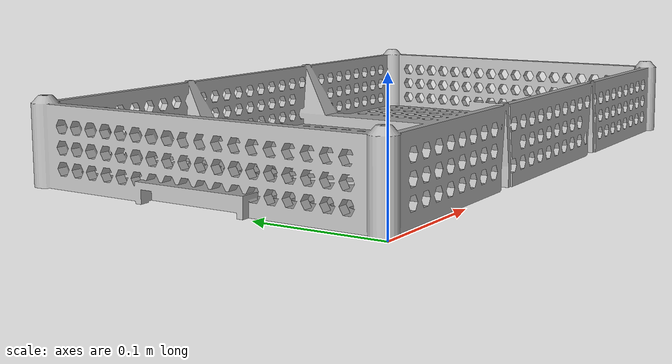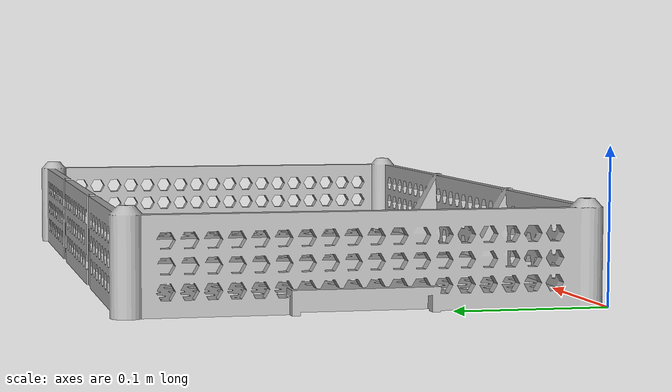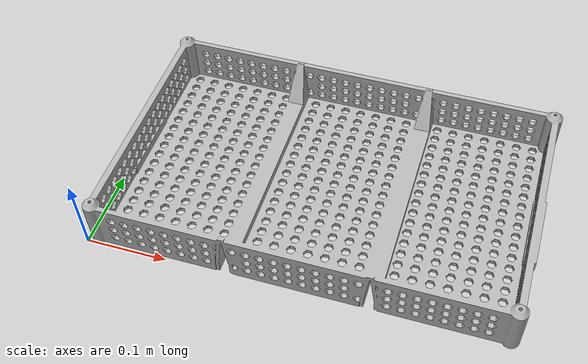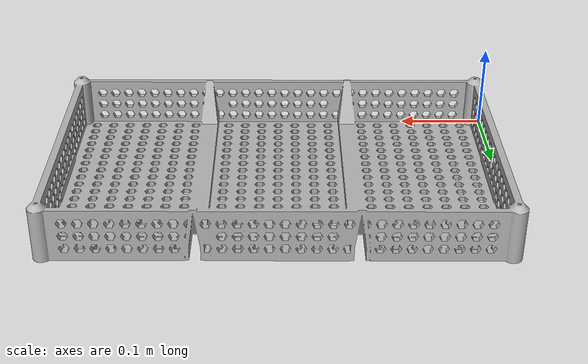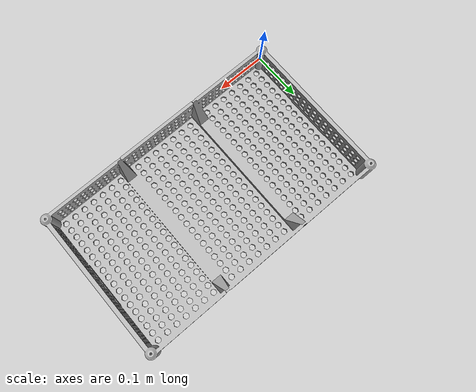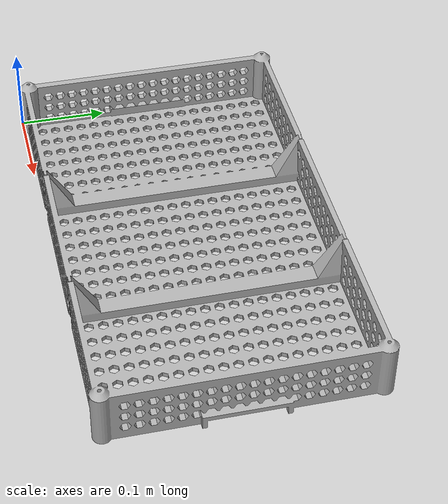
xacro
<?xml version="1.0"?>
<robot name="bandeja" xmlns:xacro="http://www.ros.org/wiki/xacro">

  <xacro:arg name="include_gazebo" default="true"/>
  <xacro:arg name="mesh_directory" default="package://bandeja_description/meshes"/>
  <xacro:property name="mesh_directory" value="$(arg mesh_directory)"/>

  <xacro:include filename="materials.xacro"/>
  <xacro:include filename="bandeja.ros2control"/>
  <xacro:if value="$(arg include_gazebo)">
    <xacro:include filename="bandeja.gazebo"/>
  </xacro:if>

  <link name="base_link">
    <inertial>
      <origin xyz="0.2589231849793322 0.15409413662488208 0.01668275201406195" rpy="0 0 0"/>
      <mass value="8.678276715774595"/>
      <inertia ixx="0.098494" iyy="0.246762" izz="0.338976" ixy="-6e-06" iyz="1e-06" ixz="-1e-06"/>
    </inertial>
    <visual>
      <origin xyz="0 0 0" rpy="0 0 0"/>
      <geometry>
        <mesh filename="${mesh_directory}/base_link.stl" scale="0.001 0.001 0.001"/>
      </geometry>
      <material name="silver"/>
    </visual>
    <collision>
      <origin xyz="0 0 0" rpy="0 0 0"/>
      <geometry>
        <mesh filename="${mesh_directory}/base_link.stl" scale="0.001 0.001 0.001"/>
      </geometry>
    </collision>
  </link>

</robot>

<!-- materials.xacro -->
<robot name="bandeja" xmlns:xacro="http://www.ros.org/wiki/xacro" >

<material name="silver">
  <color rgba="0.700 0.700 0.700 1.000"/>
</material>

</robot>

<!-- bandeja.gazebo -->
<robot name="bandeja" xmlns:xacro="http://www.ros.org/wiki/xacro" >

<xacro:property name="body_color" value="Gazebo/Silver" />

<gazebo reference="base_link">
  <material>${body_color}</material>
  <mu1>0.2</mu1>
  <mu2>0.2</mu2>
  <self_collide>true</self_collide>
  <gravity>true</gravity>
</gazebo>

</robot>
